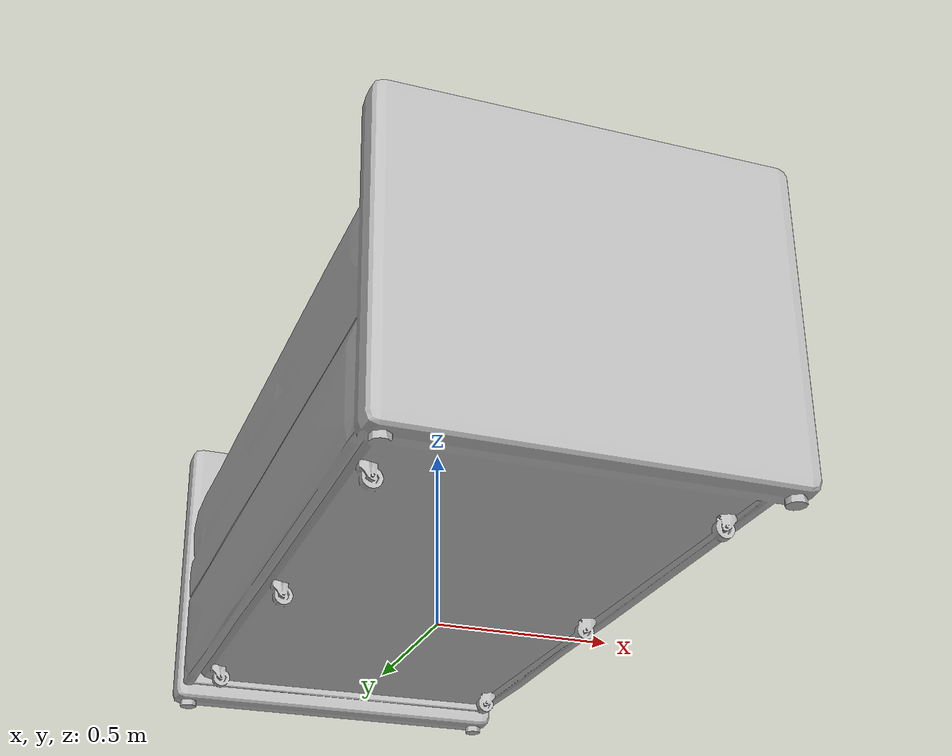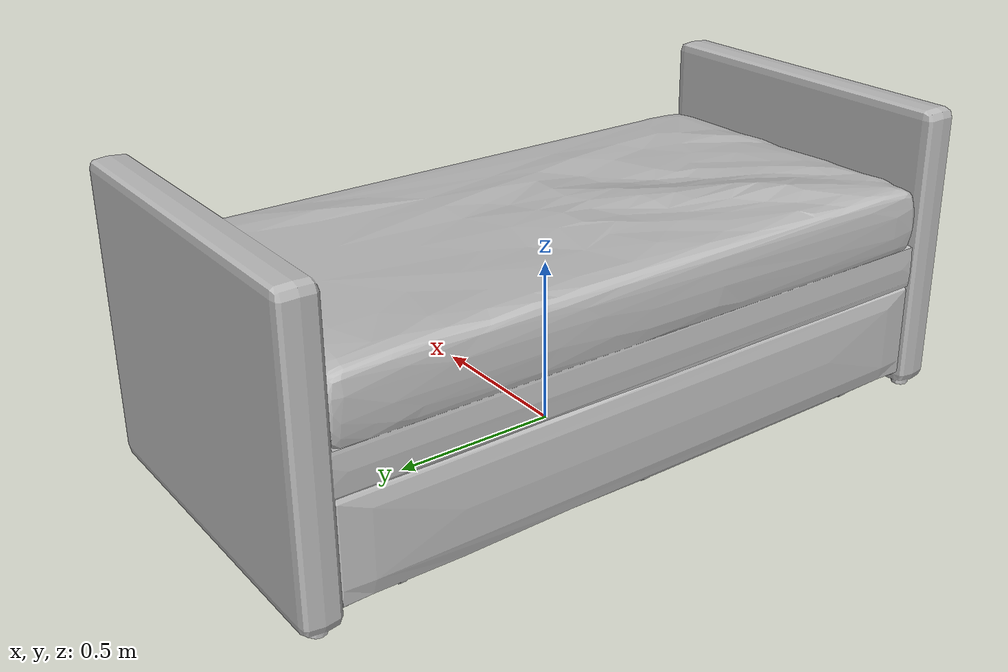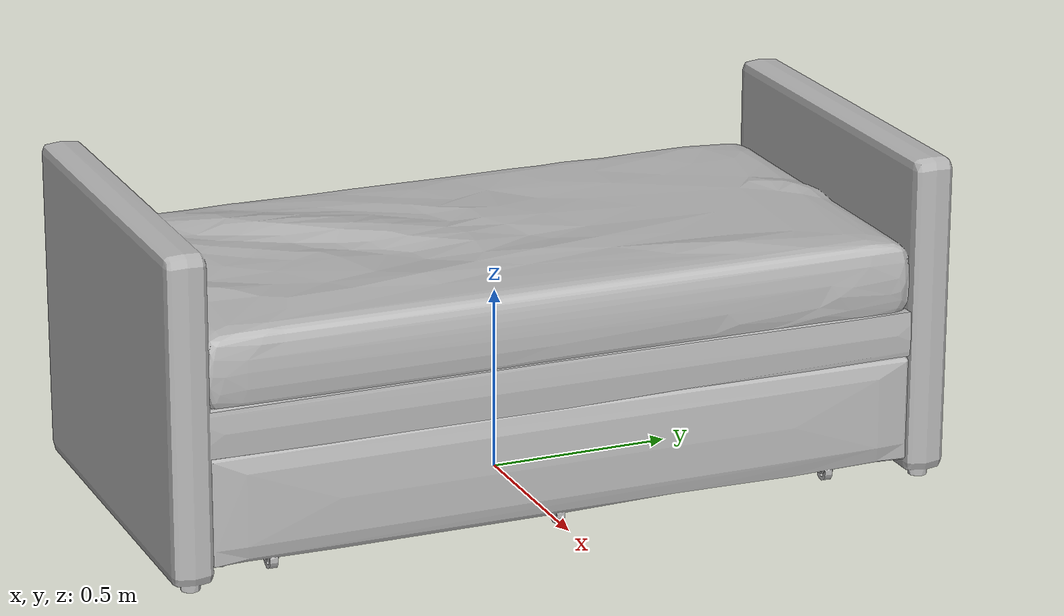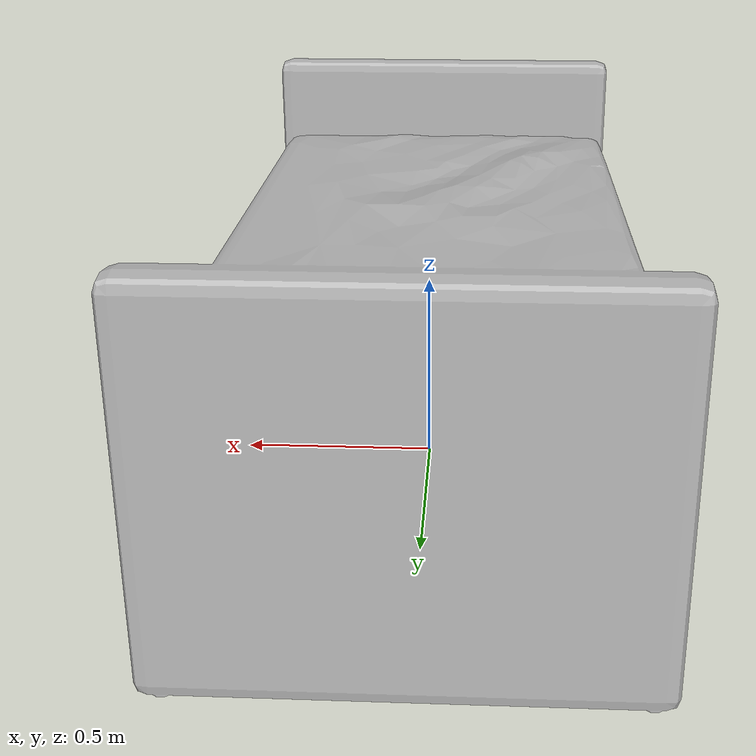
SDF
<sdf version="1.6">
	<model name="DaybedSets_O4f4dc74f7857_lod0">
		<link name="main_link">
			<visual name="visual_RootNode">
				<geometry>
					<mesh>
						<uri>model://DaybedSets_O4f4dc74f7857_lod0/meshes/visual_RootNode.dae</uri>
					</mesh>
				</geometry>
			</visual>
			<collision name="collision_RootNode_lod0_0">
				<geometry>
					<mesh>
						<uri>model://DaybedSets_O4f4dc74f7857_lod0/meshes/collision_RootNode_lod0_0.dae</uri>
					</mesh>
				</geometry>
			</collision>
		</link>
	</model>
</sdf>
